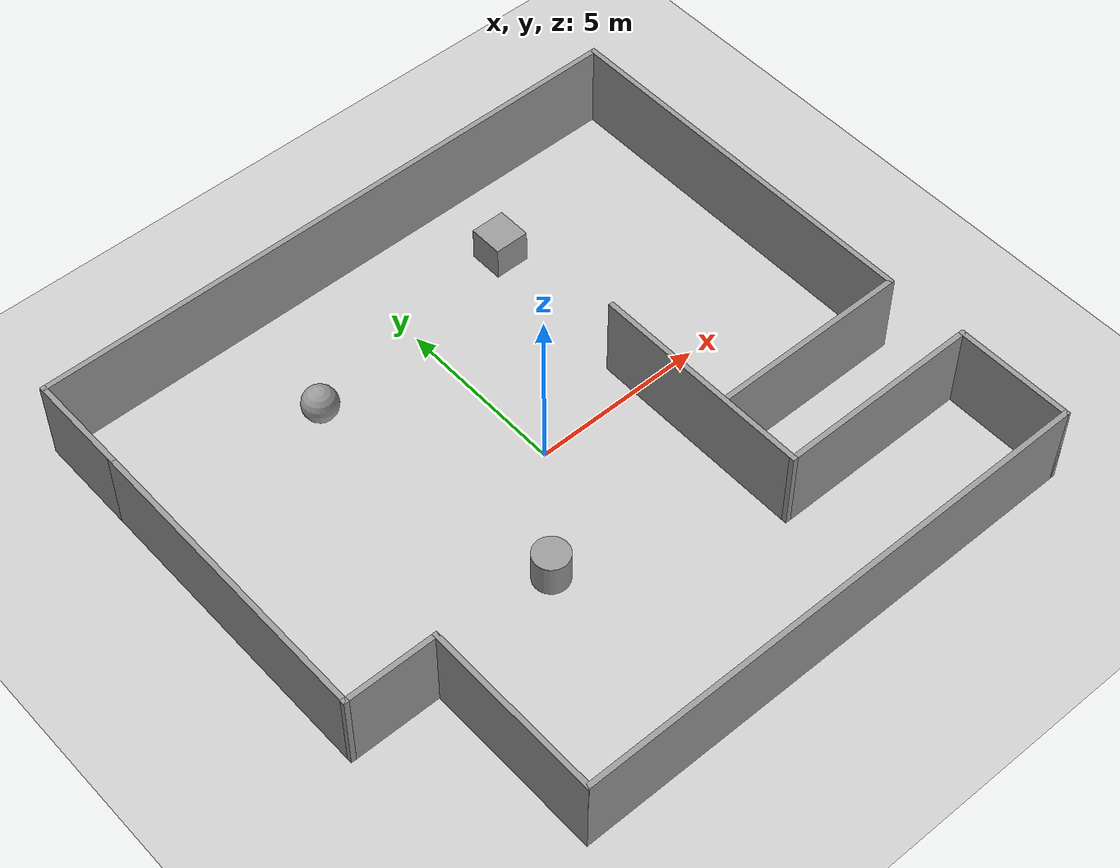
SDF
<sdf version="1.7">
 <world name="default">
  <light name="sun" type="directional">
   <pose>0 0 10 0 -0 0</pose>
   <diffuse>0.8 0.8 0.8 1</diffuse>
   <specular>0.2 0.2 0.2 1</specular>
   <attenuation>
    <range>1000</range>
    <constant>0.9</constant>
    <linear>0.01</linear>
    <quadratic>0.001</quadratic>
   </attenuation>
   <direction>-0.5 0.1 -0.9</direction>
   <spot><inner_angle>0</inner_angle><outer_angle>0</outer_angle><falloff>0</falloff></spot>
  </light>
  <model name="ground_plane">
   <static>1</static>
   <link name="link">
    <collision name="collision">
     <geometry><plane><normal>0 0 1</normal><size>100 100</size></plane></geometry>
     <surface><friction><ode><mu>100</mu><mu2>50</mu2></ode></friction></surface>
    </collision>
    <visual name="visual">
     <cast_shadows>0</cast_shadows>
     <geometry><plane><normal>0 0 1</normal><size>100 100</size></plane></geometry>
     <material>
      <script><uri>file://media/materials/scripts/gazebo.material</uri><name>Gazebo/Grey</name></script>
     </material>
    </visual>
   </link>
  </model>
  <gravity>0 0 -9.8</gravity>
  <magnetic_field>6e-06 2.3e-05 -4.2e-05</magnetic_field>
  <atmosphere type="adiabatic"/>
  <physics type="ode">
   <max_step_size>0.001</max_step_size>
   <real_time_factor>1</real_time_factor>
   <real_time_update_rate>1000</real_time_update_rate>
  </physics>
  <scene><ambient>0.4 0.4 0.4 1</ambient><background>0.7 0.7 0.7 1</background><shadows>1</shadows></scene>
  <spherical_coordinates>
   <surface_model>EARTH_WGS84</surface_model>
   <latitude_deg>0</latitude_deg>
   <longitude_deg>0</longitude_deg>
   <elevation>0</elevation>
   <heading_deg>0</heading_deg>
  </spherical_coordinates>
  <model name="Untitled">
   <pose>-0.016756 -0.336919 0 0 -0 0</pose>
   <link name="Wall_18">
    <collision name="Wall_18_Collision">
     <geometry><box><size>5.25 0.15 2.5</size></box></geometry>
     <pose>0 0 1.25 0 -0 0</pose>
    </collision>
    <visual name="Wall_18_Visual">
     <pose>0 0 1.25 0 -0 0</pose>
     <geometry><box><size>5.25 0.15 2.5</size></box></geometry>
     <material>
      <script><uri>file://media/materials/scripts/gazebo.material</uri><name>Gazebo/Grey</name></script>
      <ambient>1 1 1 1</ambient>
     </material>
     <meta><layer>0</layer></meta>
    </visual>
    <pose>-6.375 -5.85 0 0 -0 -1.5708</pose>
   </link>
   <link name="Wall_19">
    <collision name="Wall_19_Collision">
     <geometry><box><size>15.5 0.15 2.5</size></box></geometry>
     <pose>0 0 1.25 0 -0 0</pose>
    </collision>
    <visual name="Wall_19_Visual">
     <pose>0 0 1.25 0 -0 0</pose>
     <geometry><box><size>15.5 0.15 2.5</size></box></geometry>
     <material>
      <script><uri>file://media/materials/scripts/gazebo.material</uri><name>Gazebo/Grey</name></script>
      <ambient>1 1 1 1</ambient>
     </material>
     <meta><layer>0</layer></meta>
    </visual>
    <pose>1.3 -8.4 0 0 -0 0</pose>
   </link>
   <link name="Wall_22">
    <collision name="Wall_22_Collision">
     <geometry><box><size>2.75 0.15 2.5</size></box></geometry>
     <pose>0 0 1.25 0 -0 0</pose>
    </collision>
    <visual name="Wall_22_Visual">
     <pose>0 0 1.25 0 -0 0</pose>
     <geometry><box><size>2.75 0.15 2.5</size></box></geometry>
     <material>
      <script><uri>file://media/materials/scripts/gazebo.material</uri><name>Gazebo/Grey</name></script>
      <ambient>1 1 1 1</ambient>
     </material>
     <meta><layer>0</layer></meta>
    </visual>
    <pose>-7.675 -3.3 0 0 -0 3.14159</pose>
   </link>
   <link name="Wall_23">
    <collision name="Wall_23_Collision">
     <geometry><box><size>9 0.15 2.5</size></box></geometry>
     <pose>0 0 1.25 0 -0 0</pose>
    </collision>
    <visual name="Wall_23_Visual">
     <pose>0 0 1.25 0 -0 0</pose>
     <geometry><box><size>9 0.15 2.5</size></box></geometry>
     <material>
      <script><uri>file://media/materials/scripts/gazebo.material</uri><name>Gazebo/Grey</name></script>
      <ambient>1 1 1 1</ambient>
     </material>
     <meta><layer>0</layer></meta>
    </visual>
    <pose>-8.975 1.125 0 0 -0 1.5708</pose>
   </link>
   <link name="Wall_25">
    <collision name="Wall_25_Collision">
     <geometry><box><size>3 0.15 2.5</size></box></geometry>
     <pose>0 0 1.25 0 -0 0</pose>
    </collision>
    <visual name="Wall_25_Visual">
     <pose>0 0 1.25 0 -0 0</pose>
     <geometry><box><size>3 0.15 2.5</size></box></geometry>
     <material>
      <script><uri>file://media/materials/scripts/gazebo.material</uri><name>Gazebo/Grey</name></script>
      <ambient>1 1 1 1</ambient>
     </material>
     <meta><layer>0</layer></meta>
    </visual>
    <pose>-8.975 6.975 0 0 -0 1.5708</pose>
   </link>
   <link name="Wall_26">
    <collision name="Wall_26_Collision">
     <geometry><box><size>18 0.15 2.5</size></box></geometry>
     <pose>0 0 1.25 0 -0 0</pose>
    </collision>
    <visual name="Wall_26_Visual">
     <pose>0 0 1.25 0 -0 0</pose>
     <geometry><box><size>18 0.15 2.5</size></box></geometry>
     <material>
      <script><uri>file://media/materials/scripts/gazebo.material</uri><name>Gazebo/Grey</name></script>
      <ambient>1 1 1 1</ambient>
     </material>
     <meta><layer>0</layer></meta>
    </visual>
    <pose>-0.05 8.4 0 0 -0 0</pose>
   </link>
   <link name="Wall_27">
    <collision name="Wall_27_Collision">
     <geometry><box><size>11.25 0.15 2.5</size></box></geometry>
     <pose>0 0 1.25 0 -0 0</pose>
    </collision>
    <visual name="Wall_27_Visual">
     <pose>0 0 1.25 0 -0 0</pose>
     <geometry><box><size>11.25 0.15 2.5</size></box></geometry>
     <material>
      <script><uri>file://media/materials/scripts/gazebo.material</uri><name>Gazebo/Grey</name></script>
      <ambient>1 1 1 1</ambient>
     </material>
     <meta><layer>0</layer></meta>
    </visual>
    <pose>8.875 2.85 0 0 -0 -1.5708</pose>
   </link>
   <link name="Wall_29">
    <collision name="Wall_29_Collision">
     <geometry><box><size>3.5 0.15 2.5</size></box></geometry>
     <pose>0 0 1.25 0 -0 0</pose>
    </collision>
    <visual name="Wall_29_Visual">
     <pose>0 0 1.25 0 -0 0</pose>
     <geometry><box><size>3.5 0.15 2.5</size></box></geometry>
     <material>
      <script><uri>file://media/materials/scripts/gazebo.material</uri><name>Gazebo/Grey</name></script>
      <ambient>1 1 1 1</ambient>
     </material>
     <meta><layer>0</layer></meta>
    </visual>
    <pose>8.975 -6.725 0 0 -0 1.5708</pose>
   </link>
   <link name="Wall_30">
    <collision name="Wall_30_Collision">
     <geometry><box><size>6 0.15 2.5</size></box></geometry>
     <pose>0 0 1.25 0 -0 0</pose>
    </collision>
    <visual name="Wall_30_Visual">
     <pose>0 0 1.25 0 -0 0</pose>
     <geometry><box><size>6 0.15 2.5</size></box></geometry>
     <material>
      <script><uri>file://media/materials/scripts/gazebo.material</uri><name>Gazebo/Grey</name></script>
      <ambient>1 1 1 1</ambient>
     </material>
     <meta><layer>0</layer></meta>
    </visual>
    <pose>6.05 -5.05 0 0 -0 3.14159</pose>
   </link>
   <link name="Wall_31">
    <collision name="Wall_31_Collision">
     <geometry><box><size>6.5 0.15 2.5</size></box></geometry>
     <pose>0 0 1.25 0 -0 0</pose>
    </collision>
    <visual name="Wall_31_Visual">
     <pose>0 0 1.25 0 -0 0</pose>
     <geometry><box><size>6.5 0.15 2.5</size></box></geometry>
     <material>
      <script><uri>file://media/materials/scripts/gazebo.material</uri><name>Gazebo/Grey</name></script>
      <ambient>1 1 1 1</ambient>
     </material>
     <meta><layer>0</layer></meta>
    </visual>
    <pose>3.125 -1.875 0 0 -0 1.5708</pose>
   </link>
   <link name="Wall_33">
    <collision name="Wall_33_Collision">
     <geometry><box><size>5.75 0.15 2.5</size></box></geometry>
     <pose>0 0 1.25 0 -0 0</pose>
    </collision>
    <visual name="Wall_33_Visual">
     <pose>0 0 1.25 0 -0 0</pose>
     <geometry><box><size>5.75 0.15 2.5</size></box></geometry>
     <material>
      <script><uri>file://media/materials/scripts/gazebo.material</uri><name>Gazebo/Grey</name></script>
      <ambient>1 1 1 1</ambient>
     </material>
     <meta><layer>0</layer></meta>
    </visual>
    <pose>6.075 -2.7 0 0 -0 3.14159</pose>
   </link>
   <static>1</static>
  </model>
  <model name="unit_sphere">
   <pose>-3.39922 4.64885 0.5 0 -0 0</pose>
   <link name="link">
    <inertial>
     <mass>1</mass>
     <inertia><ixx>0.1</ixx><ixy>0</ixy><ixz>0</ixz><iyy>0.1</iyy><iyz>0</iyz><izz>0.1</izz></inertia>
    </inertial>
    <collision name="collision"><geometry><sphere><radius>0.5</radius></sphere></geometry></collision>
    <visual name="visual">
     <geometry><sphere><radius>0.5</radius></sphere></geometry>
     <material>
      <script><name>Gazebo/Grey</name><uri>file://media/materials/scripts/gazebo.material</uri></script>
     </material>
    </visual>
   </link>
  </model>
  <model name="unit_box">
   <pose>3.47487 5.74637 0.499995 -1e-05 -0 0</pose>
   <link name="link">
    <inertial>
     <mass>1</mass>
     <inertia>
      <ixx>0.166667</ixx>
      <ixy>0</ixy>
      <ixz>0</ixz>
      <iyy>0.166667</iyy>
      <iyz>0</iyz>
      <izz>0.166667</izz>
     </inertia>
    </inertial>
    <collision name="collision"><geometry><box><size>1 1 1</size></box></geometry></collision>
    <visual name="visual">
     <geometry><box><size>1 1 1</size></box></geometry>
     <material>
      <script><name>Gazebo/Grey</name><uri>file://media/materials/scripts/gazebo.material</uri></script>
     </material>
    </visual>
   </link>
  </model>
  <model name="unit_cylinder">
   <pose>-2.30411 -2.8765 0.499997 3e-06 4e-06 -0</pose>
   <link name="link">
    <inertial>
     <mass>1</mass>
     <inertia><ixx>0.145833</ixx><ixy>0</ixy><ixz>0</ixz><iyy>0.145833</iyy><iyz>0</iyz><izz>0.125</izz></inertia>
    </inertial>
    <collision name="collision">
     <geometry><cylinder><radius>0.5</radius><length>1</length></cylinder></geometry>
    </collision>
    <visual name="visual">
     <geometry><cylinder><radius>0.5</radius><length>1</length></cylinder></geometry>
     <material>
      <script><name>Gazebo/Grey</name><uri>file://media/materials/scripts/gazebo.material</uri></script>
     </material>
    </visual>
   </link>
  </model>
 </world>
</sdf>
